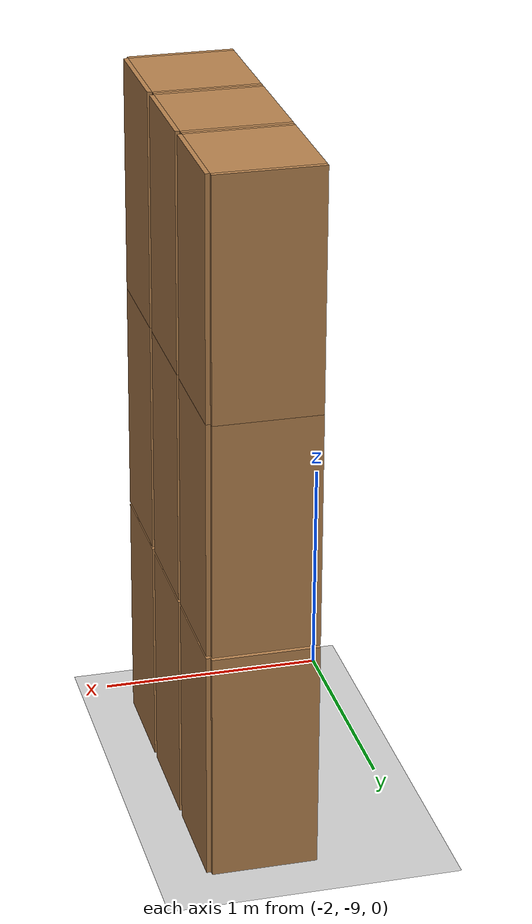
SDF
<sdf version="1.6">
 <world name="default">
  <model name="ground_plane">
   <static>1</static>
   <link name="link">
    <collision name="collision">
     <geometry><plane><normal>0 0 1</normal><size>100 100</size></plane></geometry>
     <surface>
      <contact><collide_bitmask>65535</collide_bitmask></contact>
      <friction><ode><mu>100</mu><mu2>50</mu2></ode></friction>
     </surface>
    </collision>
    <visual name="visual">
     <cast_shadows>0</cast_shadows>
     <geometry><plane><normal>0 0 1</normal><size>100 100</size></plane></geometry>
     <material>
      <script><uri>file://media/materials/scripts/gazebo.material</uri><name>Gazebo/Grey</name></script>
     </material>
    </visual>
   </link>
  </model>
  <model name="Locker18_clone_4_clone_2_clone_2_clone_2_clone_clone_2">
   <model name="Locker18">
    <model name="Locker3">
     <model name="cabinet">
      <static>1</static>
      <link name="cabinet_bottom_plate">
       <inertial>
        <pose>0 0 -1 0 -0 0</pose>
        <inertia><ixx>2.05</ixx><ixy>0</ixy><ixz>0</ixz><iyy>2.05</iyy><iyz>0</iyz><izz>2.05</izz></inertia>
        <mass>25</mass>
       </inertial>
       <collision name="cabinet_bottom_plate_geom">
        <pose>0 0 0.01 0 -0 0</pose>
        <geometry><box><size>0.45 0.45 0.02</size></box></geometry>
       </collision>
       <visual name="cabinet_bottom_plate_geom_visual">
        <pose>0 0 0.01 0 -0 0</pose>
        <geometry><box><size>0.45 0.45 0.02</size></box></geometry>
        <material>
         <script><uri>file://media/materials/scripts/gazebo.material</uri><name>Gazebo/Wood</name></script>
        </material>
       </visual>
       <collision name="cabinet_bottom_plate_geom_cabinet_back_plate">
        <pose>0.235 0 0.51 0 -0 0</pose>
        <geometry><box><size>0.02 0.45 1.02</size></box></geometry>
       </collision>
       <visual name="cabinet_bottom_plate_geom_cabinet_back_plate_visual">
        <pose>0.235 0 0.51 0 -0 0</pose>
        <geometry><box><size>0.02 0.45 1.02</size></box></geometry>
        <material>
         <script><uri>file://media/materials/scripts/gazebo.material</uri><name>Gazebo/Wood</name></script>
        </material>
       </visual>
       <collision name="cabinet_bottom_plate_geom_cabinet_left_plate">
        <pose>0 0.235 0.51 0 -0 0</pose>
        <geometry><box><size>0.45 0.02 1.02</size></box></geometry>
       </collision>
       <visual name="cabinet_bottom_plate_geom_cabinet_left_plate_visual">
        <pose>0 0.235 0.51 0 -0 0</pose>
        <geometry><box><size>0.45 0.02 1.02</size></box></geometry>
        <material>
         <script><uri>file://media/materials/scripts/gazebo.material</uri><name>Gazebo/Wood</name></script>
        </material>
       </visual>
       <collision name="cabinet_bottom_plate_geom_cabinet_middle_plate">
        <pose>0 0 0.51 0 -0 0</pose>
        <geometry><box><size>0.45 0.45 0.02</size></box></geometry>
       </collision>
       <visual name="cabinet_bottom_plate_geom_cabinet_middle_plate_visual">
        <pose>0 0 0.51 0 -0 0</pose>
        <geometry><box><size>0.45 0.45 0.02</size></box></geometry>
        <material>
         <script><uri>file://media/materials/scripts/gazebo.material</uri><name>Gazebo/Wood</name></script>
        </material>
       </visual>
       <collision name="cabinet_bottom_plate_geom_cabinet_right_plate">
        <pose>0 -0.235 0.51 0 -0 0</pose>
        <geometry><box><size>0.45 0.02 1.02</size></box></geometry>
       </collision>
       <visual name="cabinet_bottom_plate_geom_cabinet_right_plate_visual">
        <pose>0 -0.235 0.51 0 -0 0</pose>
        <geometry><box><size>0.45 0.02 1.02</size></box></geometry>
        <material>
         <script><uri>file://media/materials/scripts/gazebo.material</uri><name>Gazebo/Wood</name></script>
        </material>
       </visual>
       <collision name="cabinet_bottom_plate_geom_cabinet_top_plate">
        <pose>0 0 1.01 0 -0 0</pose>
        <geometry><box><size>0.45 0.45 0.02</size></box></geometry>
       </collision>
       <visual name="cabinet_bottom_plate_geom_cabinet_top_plate_visual">
        <pose>0 0 1.01 0 -0 0</pose>
        <geometry><box><size>0.45 0.45 0.02</size></box></geometry>
        <material>
         <script><uri>file://media/materials/scripts/gazebo.material</uri><name>Gazebo/Wood</name></script>
        </material>
       </visual>
      </link>
      <pose>-0.676968 1.45758 0 0 -0 0</pose>
     </model>
     <model name="cabinet_clone">
      <static>1</static>
      <link name="cabinet_bottom_plate">
       <inertial>
        <pose>0 0 -1 0 -0 0</pose>
        <inertia><ixx>2.05</ixx><ixy>0</ixy><ixz>0</ixz><iyy>2.05</iyy><iyz>0</iyz><izz>2.05</izz></inertia>
        <mass>25</mass>
       </inertial>
       <collision name="cabinet_bottom_plate_geom">
        <pose>0 0 0.01 0 -0 0</pose>
        <geometry><box><size>0.45 0.45 0.02</size></box></geometry>
       </collision>
       <visual name="cabinet_bottom_plate_geom_visual">
        <pose>0 0 0.01 0 -0 0</pose>
        <geometry><box><size>0.45 0.45 0.02</size></box></geometry>
        <material>
         <script><uri>file://media/materials/scripts/gazebo.material</uri><name>Gazebo/Wood</name></script>
        </material>
       </visual>
       <collision name="cabinet_bottom_plate_geom_cabinet_back_plate">
        <pose>0.235 0 0.51 0 -0 0</pose>
        <geometry><box><size>0.02 0.45 1.02</size></box></geometry>
       </collision>
       <visual name="cabinet_bottom_plate_geom_cabinet_back_plate_visual">
        <pose>0.235 0 0.51 0 -0 0</pose>
        <geometry><box><size>0.02 0.45 1.02</size></box></geometry>
        <material>
         <script><uri>file://media/materials/scripts/gazebo.material</uri><name>Gazebo/Wood</name></script>
        </material>
       </visual>
       <collision name="cabinet_bottom_plate_geom_cabinet_left_plate">
        <pose>0 0.235 0.51 0 -0 0</pose>
        <geometry><box><size>0.45 0.02 1.02</size></box></geometry>
       </collision>
       <visual name="cabinet_bottom_plate_geom_cabinet_left_plate_visual">
        <pose>0 0.235 0.51 0 -0 0</pose>
        <geometry><box><size>0.45 0.02 1.02</size></box></geometry>
        <material>
         <script><uri>file://media/materials/scripts/gazebo.material</uri><name>Gazebo/Wood</name></script>
        </material>
       </visual>
       <collision name="cabinet_bottom_plate_geom_cabinet_middle_plate">
        <pose>0 0 0.51 0 -0 0</pose>
        <geometry><box><size>0.45 0.45 0.02</size></box></geometry>
       </collision>
       <visual name="cabinet_bottom_plate_geom_cabinet_middle_plate_visual">
        <pose>0 0 0.51 0 -0 0</pose>
        <geometry><box><size>0.45 0.45 0.02</size></box></geometry>
        <material>
         <script><uri>file://media/materials/scripts/gazebo.material</uri><name>Gazebo/Wood</name></script>
        </material>
       </visual>
       <collision name="cabinet_bottom_plate_geom_cabinet_right_plate">
        <pose>0 -0.235 0.51 0 -0 0</pose>
        <geometry><box><size>0.45 0.02 1.02</size></box></geometry>
       </collision>
       <visual name="cabinet_bottom_plate_geom_cabinet_right_plate_visual">
        <pose>0 -0.235 0.51 0 -0 0</pose>
        <geometry><box><size>0.45 0.02 1.02</size></box></geometry>
        <material>
         <script><uri>file://media/materials/scripts/gazebo.material</uri><name>Gazebo/Wood</name></script>
        </material>
       </visual>
       <collision name="cabinet_bottom_plate_geom_cabinet_top_plate">
        <pose>0 0 1.01 0 -0 0</pose>
        <geometry><box><size>0.45 0.45 0.02</size></box></geometry>
       </collision>
       <visual name="cabinet_bottom_plate_geom_cabinet_top_plate_visual">
        <pose>0 0 1.01 0 -0 0</pose>
        <geometry><box><size>0.45 0.45 0.02</size></box></geometry>
        <material>
         <script><uri>file://media/materials/scripts/gazebo.material</uri><name>Gazebo/Wood</name></script>
        </material>
       </visual>
      </link>
      <pose>-0.676968 0.970971 0 0 -0 0</pose>
     </model>
     <model name="cabinet_clone_0">
      <static>1</static>
      <link name="cabinet_bottom_plate">
       <inertial>
        <pose>0 0 -1 0 -0 0</pose>
        <inertia><ixx>2.05</ixx><ixy>0</ixy><ixz>0</ixz><iyy>2.05</iyy><iyz>0</iyz><izz>2.05</izz></inertia>
        <mass>25</mass>
       </inertial>
       <collision name="cabinet_bottom_plate_geom">
        <pose>0 0 0.01 0 -0 0</pose>
        <geometry><box><size>0.45 0.45 0.02</size></box></geometry>
       </collision>
       <visual name="cabinet_bottom_plate_geom_visual">
        <pose>0 0 0.01 0 -0 0</pose>
        <geometry><box><size>0.45 0.45 0.02</size></box></geometry>
        <material>
         <script><uri>file://media/materials/scripts/gazebo.material</uri><name>Gazebo/Wood</name></script>
        </material>
       </visual>
       <collision name="cabinet_bottom_plate_geom_cabinet_back_plate">
        <pose>0.235 0 0.51 0 -0 0</pose>
        <geometry><box><size>0.02 0.45 1.02</size></box></geometry>
       </collision>
       <visual name="cabinet_bottom_plate_geom_cabinet_back_plate_visual">
        <pose>0.235 0 0.51 0 -0 0</pose>
        <geometry><box><size>0.02 0.45 1.02</size></box></geometry>
        <material>
         <script><uri>file://media/materials/scripts/gazebo.material</uri><name>Gazebo/Wood</name></script>
        </material>
       </visual>
       <collision name="cabinet_bottom_plate_geom_cabinet_left_plate">
        <pose>0 0.235 0.51 0 -0 0</pose>
        <geometry><box><size>0.45 0.02 1.02</size></box></geometry>
       </collision>
       <visual name="cabinet_bottom_plate_geom_cabinet_left_plate_visual">
        <pose>0 0.235 0.51 0 -0 0</pose>
        <geometry><box><size>0.45 0.02 1.02</size></box></geometry>
        <material>
         <script><uri>file://media/materials/scripts/gazebo.material</uri><name>Gazebo/Wood</name></script>
        </material>
       </visual>
       <collision name="cabinet_bottom_plate_geom_cabinet_middle_plate">
        <pose>0 0 0.51 0 -0 0</pose>
        <geometry><box><size>0.45 0.45 0.02</size></box></geometry>
       </collision>
       <visual name="cabinet_bottom_plate_geom_cabinet_middle_plate_visual">
        <pose>0 0 0.51 0 -0 0</pose>
        <geometry><box><size>0.45 0.45 0.02</size></box></geometry>
        <material>
         <script><uri>file://media/materials/scripts/gazebo.material</uri><name>Gazebo/Wood</name></script>
        </material>
       </visual>
       <collision name="cabinet_bottom_plate_geom_cabinet_right_plate">
        <pose>0 -0.235 0.51 0 -0 0</pose>
        <geometry><box><size>0.45 0.02 1.02</size></box></geometry>
       </collision>
       <visual name="cabinet_bottom_plate_geom_cabinet_right_plate_visual">
        <pose>0 -0.235 0.51 0 -0 0</pose>
        <geometry><box><size>0.45 0.02 1.02</size></box></geometry>
        <material>
         <script><uri>file://media/materials/scripts/gazebo.material</uri><name>Gazebo/Wood</name></script>
        </material>
       </visual>
       <collision name="cabinet_bottom_plate_geom_cabinet_top_plate">
        <pose>0 0 1.01 0 -0 0</pose>
        <geometry><box><size>0.45 0.45 0.02</size></box></geometry>
       </collision>
       <visual name="cabinet_bottom_plate_geom_cabinet_top_plate_visual">
        <pose>0 0 1.01 0 -0 0</pose>
        <geometry><box><size>0.45 0.45 0.02</size></box></geometry>
        <material>
         <script><uri>file://media/materials/scripts/gazebo.material</uri><name>Gazebo/Wood</name></script>
        </material>
       </visual>
      </link>
      <pose>-0.676968 0.48391 0 0 -0 0</pose>
     </model>
     <static>0</static>
     <pose>0 3e-06 -1.02763 0 -0 0</pose>
    </model>
    <model name="Locker3_clone">
     <model name="cabinet">
      <static>1</static>
      <link name="cabinet_bottom_plate">
       <inertial>
        <pose>0 0 -1 0 -0 0</pose>
        <inertia><ixx>2.05</ixx><ixy>0</ixy><ixz>0</ixz><iyy>2.05</iyy><iyz>0</iyz><izz>2.05</izz></inertia>
        <mass>25</mass>
       </inertial>
       <collision name="cabinet_bottom_plate_geom">
        <pose>0 0 0.01 0 -0 0</pose>
        <geometry><box><size>0.45 0.45 0.02</size></box></geometry>
       </collision>
       <visual name="cabinet_bottom_plate_geom_visual">
        <pose>0 0 0.01 0 -0 0</pose>
        <geometry><box><size>0.45 0.45 0.02</size></box></geometry>
        <material>
         <script><uri>file://media/materials/scripts/gazebo.material</uri><name>Gazebo/Wood</name></script>
        </material>
       </visual>
       <collision name="cabinet_bottom_plate_geom_cabinet_back_plate">
        <pose>0.235 0 0.51 0 -0 0</pose>
        <geometry><box><size>0.02 0.45 1.02</size></box></geometry>
       </collision>
       <visual name="cabinet_bottom_plate_geom_cabinet_back_plate_visual">
        <pose>0.235 0 0.51 0 -0 0</pose>
        <geometry><box><size>0.02 0.45 1.02</size></box></geometry>
        <material>
         <script><uri>file://media/materials/scripts/gazebo.material</uri><name>Gazebo/Wood</name></script>
        </material>
       </visual>
       <collision name="cabinet_bottom_plate_geom_cabinet_left_plate">
        <pose>0 0.235 0.51 0 -0 0</pose>
        <geometry><box><size>0.45 0.02 1.02</size></box></geometry>
       </collision>
       <visual name="cabinet_bottom_plate_geom_cabinet_left_plate_visual">
        <pose>0 0.235 0.51 0 -0 0</pose>
        <geometry><box><size>0.45 0.02 1.02</size></box></geometry>
        <material>
         <script><uri>file://media/materials/scripts/gazebo.material</uri><name>Gazebo/Wood</name></script>
        </material>
       </visual>
       <collision name="cabinet_bottom_plate_geom_cabinet_middle_plate">
        <pose>0 0 0.51 0 -0 0</pose>
        <geometry><box><size>0.45 0.45 0.02</size></box></geometry>
       </collision>
       <visual name="cabinet_bottom_plate_geom_cabinet_middle_plate_visual">
        <pose>0 0 0.51 0 -0 0</pose>
        <geometry><box><size>0.45 0.45 0.02</size></box></geometry>
        <material>
         <script><uri>file://media/materials/scripts/gazebo.material</uri><name>Gazebo/Wood</name></script>
        </material>
       </visual>
       <collision name="cabinet_bottom_plate_geom_cabinet_right_plate">
        <pose>0 -0.235 0.51 0 -0 0</pose>
        <geometry><box><size>0.45 0.02 1.02</size></box></geometry>
       </collision>
       <visual name="cabinet_bottom_plate_geom_cabinet_right_plate_visual">
        <pose>0 -0.235 0.51 0 -0 0</pose>
        <geometry><box><size>0.45 0.02 1.02</size></box></geometry>
        <material>
         <script><uri>file://media/materials/scripts/gazebo.material</uri><name>Gazebo/Wood</name></script>
        </material>
       </visual>
       <collision name="cabinet_bottom_plate_geom_cabinet_top_plate">
        <pose>0 0 1.01 0 -0 0</pose>
        <geometry><box><size>0.45 0.45 0.02</size></box></geometry>
       </collision>
       <visual name="cabinet_bottom_plate_geom_cabinet_top_plate_visual">
        <pose>0 0 1.01 0 -0 0</pose>
        <geometry><box><size>0.45 0.45 0.02</size></box></geometry>
        <material>
         <script><uri>file://media/materials/scripts/gazebo.material</uri><name>Gazebo/Wood</name></script>
        </material>
       </visual>
      </link>
      <pose>-0.676968 1.45758 0 0 -0 0</pose>
     </model>
     <model name="cabinet_clone">
      <static>1</static>
      <link name="cabinet_bottom_plate">
       <inertial>
        <pose>0 0 -1 0 -0 0</pose>
        <inertia><ixx>2.05</ixx><ixy>0</ixy><ixz>0</ixz><iyy>2.05</iyy><iyz>0</iyz><izz>2.05</izz></inertia>
        <mass>25</mass>
       </inertial>
       <collision name="cabinet_bottom_plate_geom">
        <pose>0 0 0.01 0 -0 0</pose>
        <geometry><box><size>0.45 0.45 0.02</size></box></geometry>
       </collision>
       <visual name="cabinet_bottom_plate_geom_visual">
        <pose>0 0 0.01 0 -0 0</pose>
        <geometry><box><size>0.45 0.45 0.02</size></box></geometry>
        <material>
         <script><uri>file://media/materials/scripts/gazebo.material</uri><name>Gazebo/Wood</name></script>
        </material>
       </visual>
       <collision name="cabinet_bottom_plate_geom_cabinet_back_plate">
        <pose>0.235 0 0.51 0 -0 0</pose>
        <geometry><box><size>0.02 0.45 1.02</size></box></geometry>
       </collision>
       <visual name="cabinet_bottom_plate_geom_cabinet_back_plate_visual">
        <pose>0.235 0 0.51 0 -0 0</pose>
        <geometry><box><size>0.02 0.45 1.02</size></box></geometry>
        <material>
         <script><uri>file://media/materials/scripts/gazebo.material</uri><name>Gazebo/Wood</name></script>
        </material>
       </visual>
       <collision name="cabinet_bottom_plate_geom_cabinet_left_plate">
        <pose>0 0.235 0.51 0 -0 0</pose>
        <geometry><box><size>0.45 0.02 1.02</size></box></geometry>
       </collision>
       <visual name="cabinet_bottom_plate_geom_cabinet_left_plate_visual">
        <pose>0 0.235 0.51 0 -0 0</pose>
        <geometry><box><size>0.45 0.02 1.02</size></box></geometry>
        <material>
         <script><uri>file://media/materials/scripts/gazebo.material</uri><name>Gazebo/Wood</name></script>
        </material>
       </visual>
       <collision name="cabinet_bottom_plate_geom_cabinet_middle_plate">
        <pose>0 0 0.51 0 -0 0</pose>
        <geometry><box><size>0.45 0.45 0.02</size></box></geometry>
       </collision>
       <visual name="cabinet_bottom_plate_geom_cabinet_middle_plate_visual">
        <pose>0 0 0.51 0 -0 0</pose>
        <geometry><box><size>0.45 0.45 0.02</size></box></geometry>
        <material>
         <script><uri>file://media/materials/scripts/gazebo.material</uri><name>Gazebo/Wood</name></script>
        </material>
       </visual>
       <collision name="cabinet_bottom_plate_geom_cabinet_right_plate">
        <pose>0 -0.235 0.51 0 -0 0</pose>
        <geometry><box><size>0.45 0.02 1.02</size></box></geometry>
       </collision>
       <visual name="cabinet_bottom_plate_geom_cabinet_right_plate_visual">
        <pose>0 -0.235 0.51 0 -0 0</pose>
        <geometry><box><size>0.45 0.02 1.02</size></box></geometry>
        <material>
         <script><uri>file://media/materials/scripts/gazebo.material</uri><name>Gazebo/Wood</name></script>
        </material>
       </visual>
       <collision name="cabinet_bottom_plate_geom_cabinet_top_plate">
        <pose>0 0 1.01 0 -0 0</pose>
        <geometry><box><size>0.45 0.45 0.02</size></box></geometry>
       </collision>
       <visual name="cabinet_bottom_plate_geom_cabinet_top_plate_visual">
        <pose>0 0 1.01 0 -0 0</pose>
        <geometry><box><size>0.45 0.45 0.02</size></box></geometry>
        <material>
         <script><uri>file://media/materials/scripts/gazebo.material</uri><name>Gazebo/Wood</name></script>
        </material>
       </visual>
      </link>
      <pose>-0.676968 0.970971 0 0 -0 0</pose>
     </model>
     <model name="cabinet_clone_0">
      <static>1</static>
      <link name="cabinet_bottom_plate">
       <inertial>
        <pose>0 0 -1 0 -0 0</pose>
        <inertia><ixx>2.05</ixx><ixy>0</ixy><ixz>0</ixz><iyy>2.05</iyy><iyz>0</iyz><izz>2.05</izz></inertia>
        <mass>25</mass>
       </inertial>
       <collision name="cabinet_bottom_plate_geom">
        <pose>0 0 0.01 0 -0 0</pose>
        <geometry><box><size>0.45 0.45 0.02</size></box></geometry>
       </collision>
       <visual name="cabinet_bottom_plate_geom_visual">
        <pose>0 0 0.01 0 -0 0</pose>
        <geometry><box><size>0.45 0.45 0.02</size></box></geometry>
        <material>
         <script><uri>file://media/materials/scripts/gazebo.material</uri><name>Gazebo/Wood</name></script>
        </material>
       </visual>
       <collision name="cabinet_bottom_plate_geom_cabinet_back_plate">
        <pose>0.235 0 0.51 0 -0 0</pose>
        <geometry><box><size>0.02 0.45 1.02</size></box></geometry>
       </collision>
       <visual name="cabinet_bottom_plate_geom_cabinet_back_plate_visual">
        <pose>0.235 0 0.51 0 -0 0</pose>
        <geometry><box><size>0.02 0.45 1.02</size></box></geometry>
        <material>
         <script><uri>file://media/materials/scripts/gazebo.material</uri><name>Gazebo/Wood</name></script>
        </material>
       </visual>
       <collision name="cabinet_bottom_plate_geom_cabinet_left_plate">
        <pose>0 0.235 0.51 0 -0 0</pose>
        <geometry><box><size>0.45 0.02 1.02</size></box></geometry>
       </collision>
       <visual name="cabinet_bottom_plate_geom_cabinet_left_plate_visual">
        <pose>0 0.235 0.51 0 -0 0</pose>
        <geometry><box><size>0.45 0.02 1.02</size></box></geometry>
        <material>
         <script><uri>file://media/materials/scripts/gazebo.material</uri><name>Gazebo/Wood</name></script>
        </material>
       </visual>
       <collision name="cabinet_bottom_plate_geom_cabinet_middle_plate">
        <pose>0 0 0.51 0 -0 0</pose>
        <geometry><box><size>0.45 0.45 0.02</size></box></geometry>
       </collision>
       <visual name="cabinet_bottom_plate_geom_cabinet_middle_plate_visual">
        <pose>0 0 0.51 0 -0 0</pose>
        <geometry><box><size>0.45 0.45 0.02</size></box></geometry>
        <material>
         <script><uri>file://media/materials/scripts/gazebo.material</uri><name>Gazebo/Wood</name></script>
        </material>
       </visual>
       <collision name="cabinet_bottom_plate_geom_cabinet_right_plate">
        <pose>0 -0.235 0.51 0 -0 0</pose>
        <geometry><box><size>0.45 0.02 1.02</size></box></geometry>
       </collision>
       <visual name="cabinet_bottom_plate_geom_cabinet_right_plate_visual">
        <pose>0 -0.235 0.51 0 -0 0</pose>
        <geometry><box><size>0.45 0.02 1.02</size></box></geometry>
        <material>
         <script><uri>file://media/materials/scripts/gazebo.material</uri><name>Gazebo/Wood</name></script>
        </material>
       </visual>
       <collision name="cabinet_bottom_plate_geom_cabinet_top_plate">
        <pose>0 0 1.01 0 -0 0</pose>
        <geometry><box><size>0.45 0.45 0.02</size></box></geometry>
       </collision>
       <visual name="cabinet_bottom_plate_geom_cabinet_top_plate_visual">
        <pose>0 0 1.01 0 -0 0</pose>
        <geometry><box><size>0.45 0.45 0.02</size></box></geometry>
        <material>
         <script><uri>file://media/materials/scripts/gazebo.material</uri><name>Gazebo/Wood</name></script>
        </material>
       </visual>
      </link>
      <pose>-0.676968 0.48391 0 0 -0 0</pose>
     </model>
     <static>0</static>
     <pose>0 3e-06 0.003717 0 -0 0</pose>
    </model>
    <model name="Locker3_clone_clone">
     <model name="cabinet">
      <static>1</static>
      <link name="cabinet_bottom_plate">
       <inertial>
        <pose>0 0 -1 0 -0 0</pose>
        <inertia><ixx>2.05</ixx><ixy>0</ixy><ixz>0</ixz><iyy>2.05</iyy><iyz>0</iyz><izz>2.05</izz></inertia>
        <mass>25</mass>
       </inertial>
       <collision name="cabinet_bottom_plate_geom">
        <pose>0 0 0.01 0 -0 0</pose>
        <geometry><box><size>0.45 0.45 0.02</size></box></geometry>
       </collision>
       <visual name="cabinet_bottom_plate_geom_visual">
        <pose>0 0 0.01 0 -0 0</pose>
        <geometry><box><size>0.45 0.45 0.02</size></box></geometry>
        <material>
         <script><uri>file://media/materials/scripts/gazebo.material</uri><name>Gazebo/Wood</name></script>
        </material>
       </visual>
       <collision name="cabinet_bottom_plate_geom_cabinet_back_plate">
        <pose>0.235 0 0.51 0 -0 0</pose>
        <geometry><box><size>0.02 0.45 1.02</size></box></geometry>
       </collision>
       <visual name="cabinet_bottom_plate_geom_cabinet_back_plate_visual">
        <pose>0.235 0 0.51 0 -0 0</pose>
        <geometry><box><size>0.02 0.45 1.02</size></box></geometry>
        <material>
         <script><uri>file://media/materials/scripts/gazebo.material</uri><name>Gazebo/Wood</name></script>
        </material>
       </visual>
       <collision name="cabinet_bottom_plate_geom_cabinet_left_plate">
        <pose>0 0.235 0.51 0 -0 0</pose>
        <geometry><box><size>0.45 0.02 1.02</size></box></geometry>
       </collision>
       <visual name="cabinet_bottom_plate_geom_cabinet_left_plate_visual">
        <pose>0 0.235 0.51 0 -0 0</pose>
        <geometry><box><size>0.45 0.02 1.02</size></box></geometry>
        <material>
         <script><uri>file://media/materials/scripts/gazebo.material</uri><name>Gazebo/Wood</name></script>
        </material>
       </visual>
       <collision name="cabinet_bottom_plate_geom_cabinet_middle_plate">
        <pose>0 0 0.51 0 -0 0</pose>
        <geometry><box><size>0.45 0.45 0.02</size></box></geometry>
       </collision>
       <visual name="cabinet_bottom_plate_geom_cabinet_middle_plate_visual">
        <pose>0 0 0.51 0 -0 0</pose>
        <geometry><box><size>0.45 0.45 0.02</size></box></geometry>
        <material>
         <script><uri>file://media/materials/scripts/gazebo.material</uri><name>Gazebo/Wood</name></script>
        </material>
       </visual>
       <collision name="cabinet_bottom_plate_geom_cabinet_right_plate">
        <pose>0 -0.235 0.51 0 -0 0</pose>
        <geometry><box><size>0.45 0.02 1.02</size></box></geometry>
       </collision>
       <visual name="cabinet_bottom_plate_geom_cabinet_right_plate_visual">
        <pose>0 -0.235 0.51 0 -0 0</pose>
        <geometry><box><size>0.45 0.02 1.02</size></box></geometry>
        <material>
         <script><uri>file://media/materials/scripts/gazebo.material</uri><name>Gazebo/Wood</name></script>
        </material>
       </visual>
       <collision name="cabinet_bottom_plate_geom_cabinet_top_plate">
        <pose>0 0 1.01 0 -0 0</pose>
        <geometry><box><size>0.45 0.45 0.02</size></box></geometry>
       </collision>
       <visual name="cabinet_bottom_plate_geom_cabinet_top_plate_visual">
        <pose>0 0 1.01 0 -0 0</pose>
        <geometry><box><size>0.45 0.45 0.02</size></box></geometry>
        <material>
         <script><uri>file://media/materials/scripts/gazebo.material</uri><name>Gazebo/Wood</name></script>
        </material>
       </visual>
      </link>
      <pose>-0.676968 1.45758 0 0 -0 0</pose>
     </model>
     <model name="cabinet_clone">
      <static>1</static>
      <link name="cabinet_bottom_plate">
       <inertial>
        <pose>0 0 -1 0 -0 0</pose>
        <inertia><ixx>2.05</ixx><ixy>0</ixy><ixz>0</ixz><iyy>2.05</iyy><iyz>0</iyz><izz>2.05</izz></inertia>
        <mass>25</mass>
       </inertial>
       <collision name="cabinet_bottom_plate_geom">
        <pose>0 0 0.01 0 -0 0</pose>
        <geometry><box><size>0.45 0.45 0.02</size></box></geometry>
       </collision>
       <visual name="cabinet_bottom_plate_geom_visual">
        <pose>0 0 0.01 0 -0 0</pose>
        <geometry><box><size>0.45 0.45 0.02</size></box></geometry>
        <material>
         <script><uri>file://media/materials/scripts/gazebo.material</uri><name>Gazebo/Wood</name></script>
        </material>
       </visual>
       <collision name="cabinet_bottom_plate_geom_cabinet_back_plate">
        <pose>0.235 0 0.51 0 -0 0</pose>
        <geometry><box><size>0.02 0.45 1.02</size></box></geometry>
       </collision>
       <visual name="cabinet_bottom_plate_geom_cabinet_back_plate_visual">
        <pose>0.235 0 0.51 0 -0 0</pose>
        <geometry><box><size>0.02 0.45 1.02</size></box></geometry>
        <material>
         <script><uri>file://media/materials/scripts/gazebo.material</uri><name>Gazebo/Wood</name></script>
        </material>
       </visual>
       <collision name="cabinet_bottom_plate_geom_cabinet_left_plate">
        <pose>0 0.235 0.51 0 -0 0</pose>
        <geometry><box><size>0.45 0.02 1.02</size></box></geometry>
       </collision>
       <visual name="cabinet_bottom_plate_geom_cabinet_left_plate_visual">
        <pose>0 0.235 0.51 0 -0 0</pose>
        <geometry><box><size>0.45 0.02 1.02</size></box></geometry>
        <material>
         <script><uri>file://media/materials/scripts/gazebo.material</uri><name>Gazebo/Wood</name></script>
        </material>
       </visual>
       <collision name="cabinet_bottom_plate_geom_cabinet_middle_plate">
        <pose>0 0 0.51 0 -0 0</pose>
        <geometry><box><size>0.45 0.45 0.02</size></box></geometry>
       </collision>
       <visual name="cabinet_bottom_plate_geom_cabinet_middle_plate_visual">
        <pose>0 0 0.51 0 -0 0</pose>
        <geometry><box><size>0.45 0.45 0.02</size></box></geometry>
        <material>
         <script><uri>file://media/materials/scripts/gazebo.material</uri><name>Gazebo/Wood</name></script>
        </material>
       </visual>
       <collision name="cabinet_bottom_plate_geom_cabinet_right_plate">
        <pose>0 -0.235 0.51 0 -0 0</pose>
        <geometry><box><size>0.45 0.02 1.02</size></box></geometry>
       </collision>
       <visual name="cabinet_bottom_plate_geom_cabinet_right_plate_visual">
        <pose>0 -0.235 0.51 0 -0 0</pose>
        <geometry><box><size>0.45 0.02 1.02</size></box></geometry>
        <material>
         <script><uri>file://media/materials/scripts/gazebo.material</uri><name>Gazebo/Wood</name></script>
        </material>
       </visual>
       <collision name="cabinet_bottom_plate_geom_cabinet_top_plate">
        <pose>0 0 1.01 0 -0 0</pose>
        <geometry><box><size>0.45 0.45 0.02</size></box></geometry>
       </collision>
       <visual name="cabinet_bottom_plate_geom_cabinet_top_plate_visual">
        <pose>0 0 1.01 0 -0 0</pose>
        <geometry><box><size>0.45 0.45 0.02</size></box></geometry>
        <material>
         <script><uri>file://media/materials/scripts/gazebo.material</uri><name>Gazebo/Wood</name></script>
        </material>
       </visual>
      </link>
      <pose>-0.676968 0.970971 0 0 -0 0</pose>
     </model>
     <model name="cabinet_clone_0">
      <static>1</static>
      <link name="cabinet_bottom_plate">
       <inertial>
        <pose>0 0 -1 0 -0 0</pose>
        <inertia><ixx>2.05</ixx><ixy>0</ixy><ixz>0</ixz><iyy>2.05</iyy><iyz>0</iyz><izz>2.05</izz></inertia>
        <mass>25</mass>
       </inertial>
       <collision name="cabinet_bottom_plate_geom">
        <pose>0 0 0.01 0 -0 0</pose>
        <geometry><box><size>0.45 0.45 0.02</size></box></geometry>
       </collision>
       <visual name="cabinet_bottom_plate_geom_visual">
        <pose>0 0 0.01 0 -0 0</pose>
        <geometry><box><size>0.45 0.45 0.02</size></box></geometry>
        <material>
         <script><uri>file://media/materials/scripts/gazebo.material</uri><name>Gazebo/Wood</name></script>
        </material>
       </visual>
       <collision name="cabinet_bottom_plate_geom_cabinet_back_plate">
        <pose>0.235 0 0.51 0 -0 0</pose>
        <geometry><box><size>0.02 0.45 1.02</size></box></geometry>
       </collision>
       <visual name="cabinet_bottom_plate_geom_cabinet_back_plate_visual">
        <pose>0.235 0 0.51 0 -0 0</pose>
        <geometry><box><size>0.02 0.45 1.02</size></box></geometry>
        <material>
         <script><uri>file://media/materials/scripts/gazebo.material</uri><name>Gazebo/Wood</name></script>
        </material>
       </visual>
       <collision name="cabinet_bottom_plate_geom_cabinet_left_plate">
        <pose>0 0.235 0.51 0 -0 0</pose>
        <geometry><box><size>0.45 0.02 1.02</size></box></geometry>
       </collision>
       <visual name="cabinet_bottom_plate_geom_cabinet_left_plate_visual">
        <pose>0 0.235 0.51 0 -0 0</pose>
        <geometry><box><size>0.45 0.02 1.02</size></box></geometry>
        <material>
         <script><uri>file://media/materials/scripts/gazebo.material</uri><name>Gazebo/Wood</name></script>
        </material>
       </visual>
       <collision name="cabinet_bottom_plate_geom_cabinet_middle_plate">
        <pose>0 0 0.51 0 -0 0</pose>
        <geometry><box><size>0.45 0.45 0.02</size></box></geometry>
       </collision>
       <visual name="cabinet_bottom_plate_geom_cabinet_middle_plate_visual">
        <pose>0 0 0.51 0 -0 0</pose>
        <geometry><box><size>0.45 0.45 0.02</size></box></geometry>
        <material>
         <script><uri>file://media/materials/scripts/gazebo.material</uri><name>Gazebo/Wood</name></script>
        </material>
       </visual>
       <collision name="cabinet_bottom_plate_geom_cabinet_right_plate">
        <pose>0 -0.235 0.51 0 -0 0</pose>
        <geometry><box><size>0.45 0.02 1.02</size></box></geometry>
       </collision>
       <visual name="cabinet_bottom_plate_geom_cabinet_right_plate_visual">
        <pose>0 -0.235 0.51 0 -0 0</pose>
        <geometry><box><size>0.45 0.02 1.02</size></box></geometry>
        <material>
         <script><uri>file://media/materials/scripts/gazebo.material</uri><name>Gazebo/Wood</name></script>
        </material>
       </visual>
       <collision name="cabinet_bottom_plate_geom_cabinet_top_plate">
        <pose>0 0 1.01 0 -0 0</pose>
        <geometry><box><size>0.45 0.45 0.02</size></box></geometry>
       </collision>
       <visual name="cabinet_bottom_plate_geom_cabinet_top_plate_visual">
        <pose>0 0 1.01 0 -0 0</pose>
        <geometry><box><size>0.45 0.45 0.02</size></box></geometry>
        <material>
         <script><uri>file://media/materials/scripts/gazebo.material</uri><name>Gazebo/Wood</name></script>
        </material>
       </visual>
      </link>
      <pose>-0.676968 0.48391 0 0 -0 0</pose>
     </model>
     <static>0</static>
     <pose>0 3e-06 1.02391 0 -0 0</pose>
    </model>
    <static>0</static>
    <pose>-0 4e-06 4e-06 0 -0 0</pose>
   </model>
   <static>0</static>
   <pose>-0.634698 -8.99235 1.08672 0 -0 0</pose>
  </model>
 </world>
</sdf>
